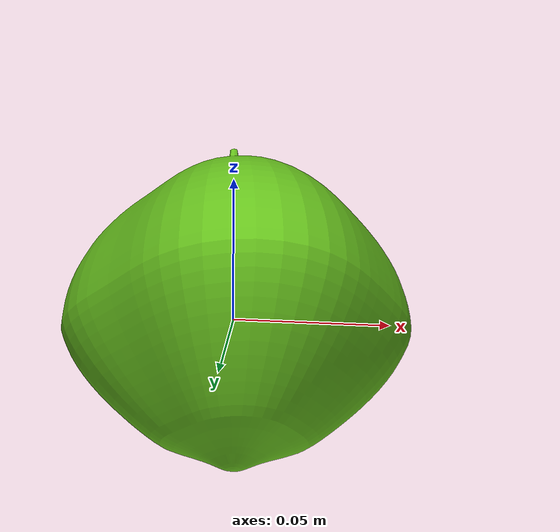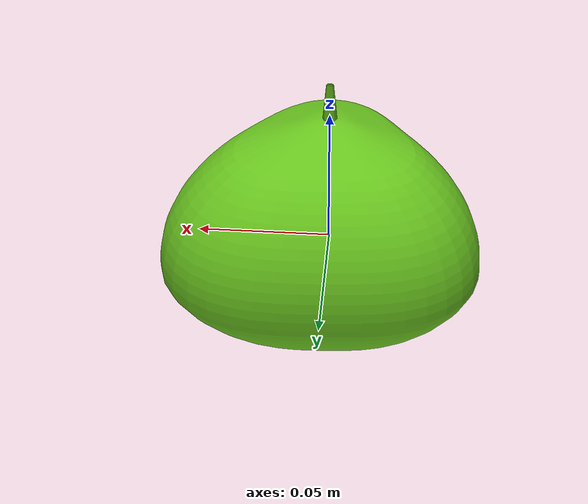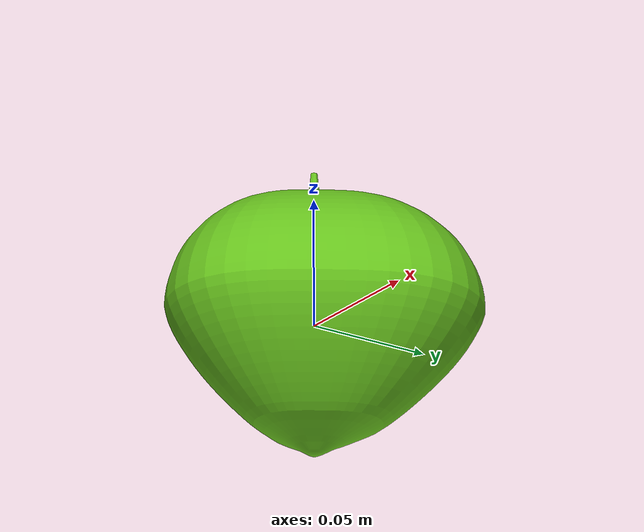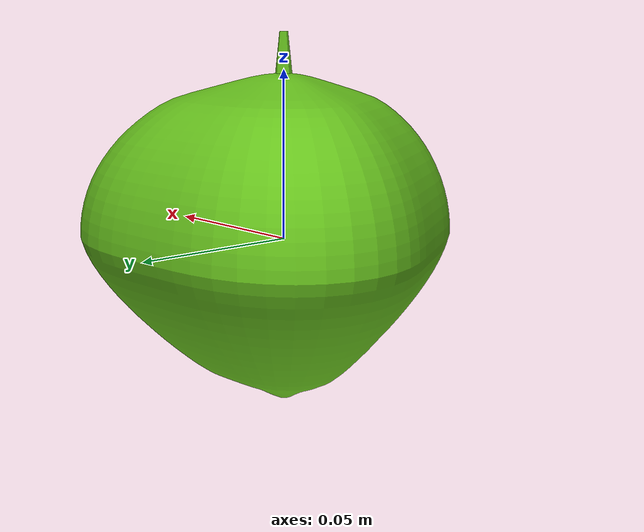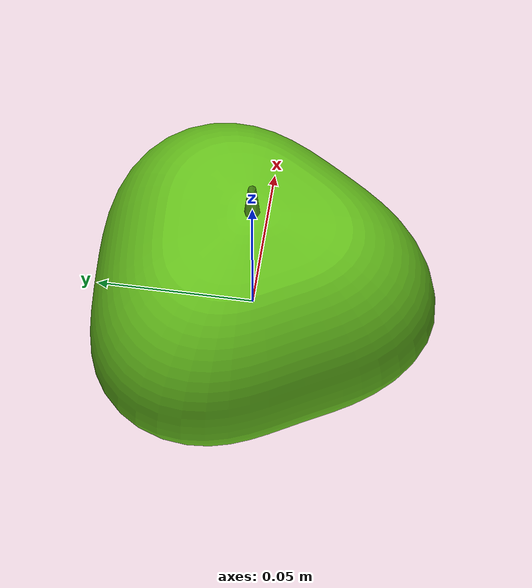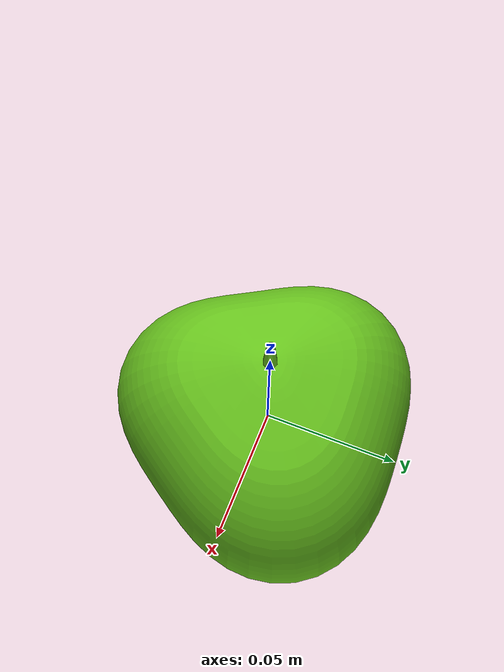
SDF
<?xml version="1.0" ?>
<sdf version="1.7">
  <model name="fragile_apple_05">
    <pose>0 0 0 0 0 0</pose>
    <link name="link">
      <inertial>
        <mass>0.47204</mass>
        <inertia>
          <ixx>0.00055878</ixx>
          <iyy>0.00055878</iyy>
          <izz>0.00055878</izz>
          <ixy>0</ixy>
          <ixz>0</ixz>
          <iyz>0</iyz>
        </inertia>
      </inertial>

      <collision name="collision">
        <geometry>
          <sphere>
            <radius>0.05440</radius>
          </sphere>
        </geometry>
        <surface>
          <friction>
            <ode>
              <mu>0.70</mu>
              <mu2>0.70</mu2>
            </ode>
          </friction>
          <contact>
            <ode>
              <kp>501187.2</kp>
              <kd>1.0</kd>
              <min_depth>0.001</min_depth>
            </ode>
          </contact>
        </surface>
      </collision>

      <collision name="flat_base">
        <pose>0 0 -0.04940 0 0 0</pose>
        <geometry>
          <cylinder>
            <radius>0.0250</radius>
            <length>0.0100</length>
          </cylinder>
        </geometry>
        <surface>
          <friction>
            <ode>
              <mu>0.70</mu>
              <mu2>0.70</mu2>
            </ode>
          </friction>
          <contact>
            <ode>
              <kp>501187.2</kp>
              <kd>1.0</kd>
              <min_depth>0.001</min_depth>
            </ode>
          </contact>
        </surface>
      </collision>

      <visual name="visual">
        <geometry>
          <mesh>
            <uri>model://apple_05/meshes/apple_05_v4.obj</uri>
            <scale>0.05440 0.05440 0.05440</scale>
          </mesh>
        </geometry>
        <material>
          <ambient>0.405 0.76 0.114 1</ambient>
          <diffuse>0.405 0.76 0.114 1</diffuse>
          <specular>0.30 0.30 0.30 1</specular>
        </material>
      </visual>
    </link>
      <plugin
      filename="libignition-gazebo-pose-publisher-system.so"
      name="ignition::gazebo::systems::PosePublisher">
      <publish_link_pose>false</publish_link_pose>
      <publish_nested_model_pose>true</publish_nested_model_pose>
      <use_pose_vector_msg>false</use_pose_vector_msg>
      <update_frequency>20</update_frequency>
    </plugin>
</model>
</sdf>
